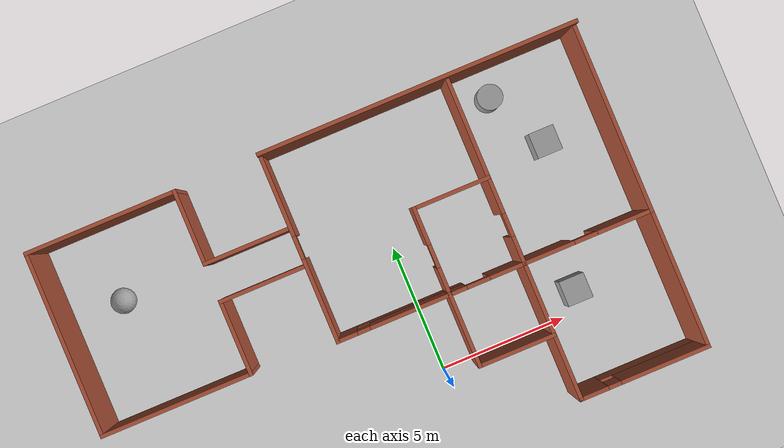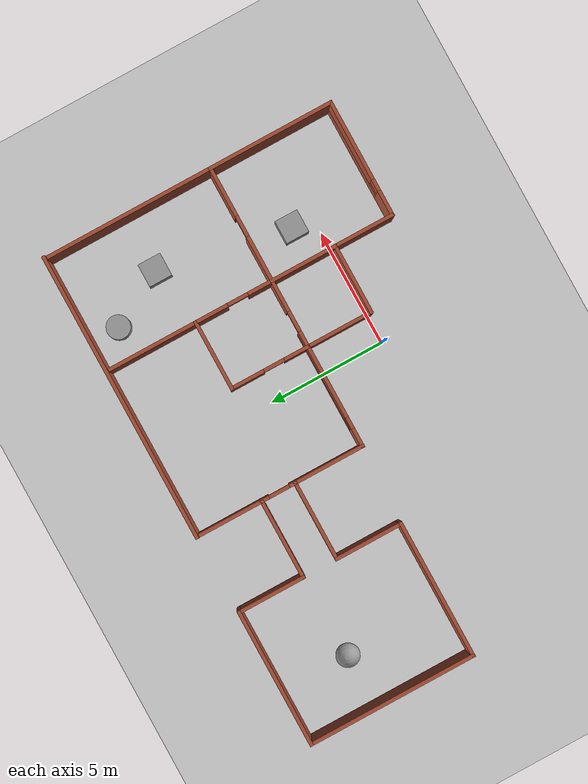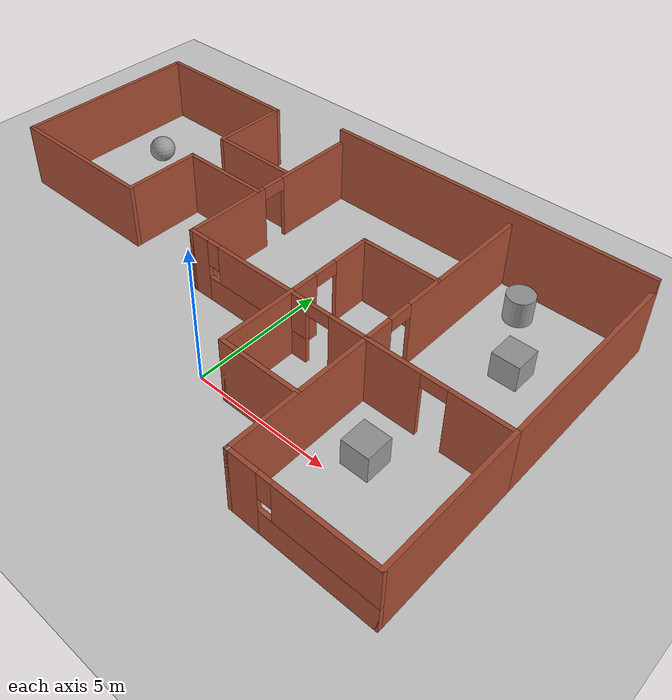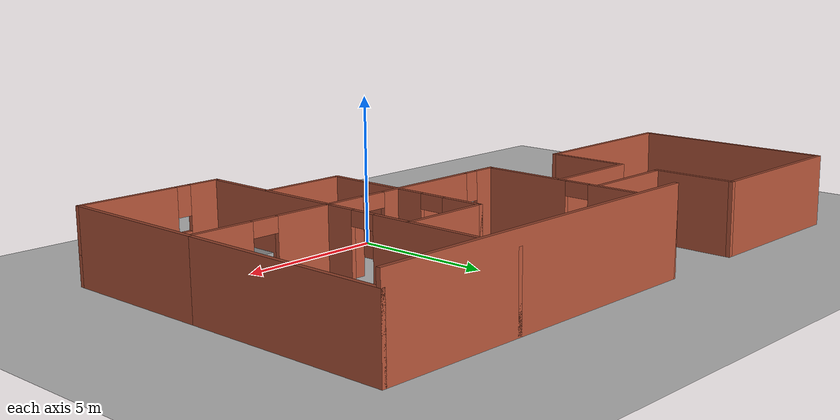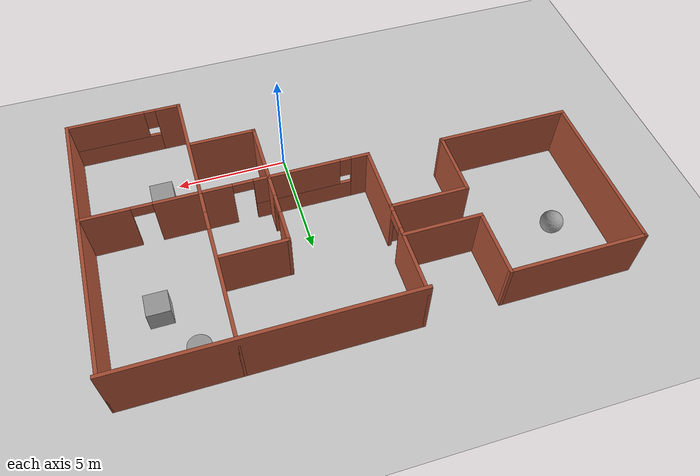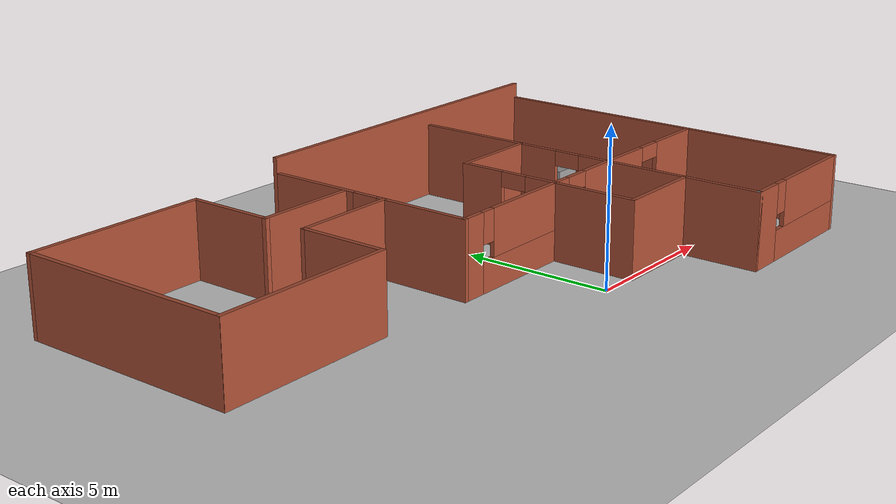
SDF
<sdf version="1.6">
 <world name="House">
  <light name="sun" type="directional">
   <pose>0 0 10 0 -0 0</pose>
   <diffuse>0.8 0.8 0.8 1</diffuse>
   <specular>0.2 0.2 0.2 1</specular>
   <attenuation>
    <range>1000</range>
    <constant>0.9</constant>
    <linear>0.01</linear>
    <quadratic>0.001</quadratic>
   </attenuation>
   <direction>-0.5 0.1 -0.9</direction>
  </light>
  <model name="ground_plane">
   <static>1</static>
   <link name="link">
    <collision name="collision">
     <geometry><plane><normal>0 0 1</normal><size>100 100</size></plane></geometry>
     <surface>
      <contact><collide_bitmask>65535</collide_bitmask></contact>
      <friction><ode><mu>100</mu><mu2>50</mu2></ode></friction>
     </surface>
    </collision>
    <visual name="visual">
     <cast_shadows>0</cast_shadows>
     <geometry><plane><normal>0 0 1</normal><size>100 100</size></plane></geometry>
     <material>
      <script><uri>file://media/materials/scripts/gazebo.material</uri><name>Gazebo/Grey</name></script>
     </material>
    </visual>
   </link>
  </model>
  <gravity>0 0 -9.8</gravity>
  <magnetic_field>6e-06 2.3e-05 -4.2e-05</magnetic_field>
  <atmosphere type="adiabatic"/>
  <physics name="default_physics" default="0" type="ode">
   <max_step_size>0.001</max_step_size>
   <real_time_factor>1</real_time_factor>
   <real_time_update_rate>1000</real_time_update_rate>
  </physics>
  <scene><ambient>0.4 0.4 0.4 1</ambient><background>0.7 0.7 0.7 1</background><shadows>1</shadows></scene>
  <audio><device>default</device></audio>
  <spherical_coordinates>
   <surface_model>EARTH_WGS84</surface_model>
   <latitude_deg>0</latitude_deg>
   <longitude_deg>0</longitude_deg>
   <elevation>0</elevation>
   <heading_deg>0</heading_deg>
  </spherical_coordinates>
  <model name="IslamHouse2">
   <pose>-1.63712 3.72481 0 0 -0 0</pose>
   <link name="Wall_0">
    <collision name="Wall_0_Collision">
     <geometry><box><size>12.5 0.15 3</size></box></geometry>
     <pose>0 0 1.5 0 -0 0</pose>
    </collision>
    <visual name="Wall_0_Visual">
     <pose>0 0 1.5 0 -0 0</pose>
     <geometry><box><size>12.5 0.15 3</size></box></geometry>
     <material>
      <script><uri>file://media/materials/scripts/gazebo.material</uri><name>Gazebo/Bricks</name></script>
      <ambient>1 1 1 1</ambient>
     </material>
     <meta><layer>0</layer></meta>
    </visual>
    <pose>4.61 6.35 0 0 -0 0</pose>
   </link>
   <link name="Wall_10">
    <pose>8.21 -1 0 0 -0 0</pose>
    <visual name="Wall_10_Visual_0">
     <pose>-1.4725 0 1.25 0 -0 0</pose>
     <geometry><box><size>2.055 0.15 2.5</size></box></geometry>
     <material>
      <script><uri>file://media/materials/scripts/gazebo.material</uri><name>Gazebo/Bricks</name></script>
      <ambient>1 1 1 1</ambient>
     </material>
     <meta><layer>0</layer></meta>
    </visual>
    <collision name="Wall_10_Collision_0">
     <geometry><box><size>2.055 0.15 2.5</size></box></geometry>
     <pose>-1.4725 0 1.25 0 -0 0</pose>
    </collision>
    <visual name="Wall_10_Visual_1">
     <pose>1.4775 0 1.25 0 -0 0</pose>
     <geometry><box><size>2.045 0.15 2.5</size></box></geometry>
     <material>
      <script><uri>file://media/materials/scripts/gazebo.material</uri><name>Gazebo/Bricks</name></script>
      <ambient>1 1 1 1</ambient>
     </material>
     <meta><layer>0</layer></meta>
    </visual>
    <collision name="Wall_10_Collision_1">
     <geometry><box><size>2.045 0.15 2.5</size></box></geometry>
     <pose>1.4775 0 1.25 0 -0 0</pose>
    </collision>
    <visual name="Wall_10_Visual_2">
     <pose>0.004999 0 2.25 0 -0 0</pose>
     <geometry><box><size>0.9 0.15 0.5</size></box></geometry>
     <material>
      <script><uri>file://media/materials/scripts/gazebo.material</uri><name>Gazebo/Bricks</name></script>
      <ambient>1 1 1 1</ambient>
     </material>
     <meta><layer>0</layer></meta>
    </visual>
    <collision name="Wall_10_Collision_2">
     <geometry><box><size>0.9 0.15 0.5</size></box></geometry>
     <pose>0.004999 0 2.25 0 -0 0</pose>
    </collision>
   </link>
   <link name="Wall_14">
    <collision name="Wall_14_Collision">
     <geometry><box><size>7.5 0.15 2.5</size></box></geometry>
     <pose>0 0 1.25 0 -0 0</pose>
    </collision>
    <visual name="Wall_14_Visual">
     <pose>0 0 1.25 0 -0 0</pose>
     <geometry><box><size>7.5 0.15 2.5</size></box></geometry>
     <material>
      <script><uri>file://media/materials/scripts/gazebo.material</uri><name>Gazebo/Bricks</name></script>
      <ambient>1 1 1 1</ambient>
     </material>
     <meta><layer>0</layer></meta>
    </visual>
    <pose>10.785 2.675 0 0 -0 -1.5708</pose>
   </link>
   <link name="Wall_19">
    <pose>2.855 0.715 0 0 -0 1.5708</pose>
    <visual name="Wall_19_Visual_0">
     <pose>-1.2025 0 1.25 0 -0 0</pose>
     <geometry><box><size>1.095 0.15 2.5</size></box></geometry>
     <material>
      <script><uri>file://media/materials/scripts/gazebo.material</uri><name>Gazebo/Bricks</name></script>
      <ambient>1 1 1 1</ambient>
     </material>
     <meta><layer>0</layer></meta>
    </visual>
    <collision name="Wall_19_Collision_0">
     <geometry><box><size>1.095 0.15 2.5</size></box></geometry>
     <pose>-1.2025 0 1.25 0 -0 0</pose>
    </collision>
    <visual name="Wall_19_Visual_1">
     <pose>0.9975 0 1.25 0 -0 0</pose>
     <geometry><box><size>1.505 0.15 2.5</size></box></geometry>
     <material>
      <script><uri>file://media/materials/scripts/gazebo.material</uri><name>Gazebo/Bricks</name></script>
      <ambient>1 1 1 1</ambient>
     </material>
     <meta><layer>0</layer></meta>
    </visual>
    <collision name="Wall_19_Collision_1">
     <geometry><box><size>1.505 0.15 2.5</size></box></geometry>
     <pose>0.9975 0 1.25 0 -0 0</pose>
    </collision>
    <visual name="Wall_19_Visual_2">
     <pose>-0.205 0 2.25 0 -0 0</pose>
     <geometry><box><size>0.9 0.15 0.5</size></box></geometry>
     <material>
      <script><uri>file://media/materials/scripts/gazebo.material</uri><name>Gazebo/Bricks</name></script>
      <ambient>1 1 1 1</ambient>
     </material>
     <meta><layer>0</layer></meta>
    </visual>
    <collision name="Wall_19_Collision_2">
     <geometry><box><size>0.9 0.15 0.5</size></box></geometry>
     <pose>-0.205 0 2.25 0 -0 0</pose>
    </collision>
   </link>
   <link name="Wall_2">
    <pose>-1.565 2.675 0 0 -0 -1.5708</pose>
    <visual name="Wall_2_Visual_0">
     <pose>-2.1125 0 1.25 0 -0 0</pose>
     <geometry><box><size>3.275 0.15 2.5</size></box></geometry>
     <material>
      <script><uri>file://media/materials/scripts/gazebo.material</uri><name>Gazebo/Bricks</name></script>
      <ambient>1 1 1 1</ambient>
     </material>
     <meta><layer>0</layer></meta>
    </visual>
    <collision name="Wall_2_Collision_0">
     <geometry><box><size>3.275 0.15 2.5</size></box></geometry>
     <pose>-2.1125 0 1.25 0 -0 0</pose>
    </collision>
    <visual name="Wall_2_Visual_1">
     <pose>2.0875 0 1.25 0 -0 0</pose>
     <geometry><box><size>3.325 0.15 2.5</size></box></geometry>
     <material>
      <script><uri>file://media/materials/scripts/gazebo.material</uri><name>Gazebo/Bricks</name></script>
      <ambient>1 1 1 1</ambient>
     </material>
     <meta><layer>0</layer></meta>
    </visual>
    <collision name="Wall_2_Collision_1">
     <geometry><box><size>3.325 0.15 2.5</size></box></geometry>
     <pose>2.0875 0 1.25 0 -0 0</pose>
    </collision>
    <visual name="Wall_2_Visual_2">
     <pose>-0.025 0 2.25 0 -0 0</pose>
     <geometry><box><size>0.9 0.15 0.5</size></box></geometry>
     <material>
      <script><uri>file://media/materials/scripts/gazebo.material</uri><name>Gazebo/Bricks</name></script>
      <ambient>1 1 1 1</ambient>
     </material>
     <meta><layer>0</layer></meta>
    </visual>
    <collision name="Wall_2_Collision_2">
     <geometry><box><size>0.9 0.15 0.5</size></box></geometry>
     <pose>-0.025 0 2.25 0 -0 0</pose>
    </collision>
   </link>
   <link name="Wall_21">
    <collision name="Wall_21_Collision">
     <geometry><box><size>3.07 0.15 2.5</size></box></geometry>
     <pose>0 0 1.25 0 -0 0</pose>
    </collision>
    <visual name="Wall_21_Visual">
     <pose>0 0 1.25 0 -0 0</pose>
     <geometry><box><size>3.07 0.15 2.5</size></box></geometry>
     <material>
      <script><uri>file://media/materials/scripts/gazebo.material</uri><name>Gazebo/Bricks</name></script>
      <ambient>1 1 1 1</ambient>
     </material>
     <meta><layer>0</layer></meta>
    </visual>
    <pose>4.315 2.39 0 0 -0 0</pose>
   </link>
   <link name="Wall_24">
    <collision name="Wall_24_Collision">
     <geometry><box><size>3 0.15 2.5</size></box></geometry>
     <pose>0 0 1.25 0 -0 0</pose>
    </collision>
    <visual name="Wall_24_Visual">
     <pose>0 0 1.25 0 -0 0</pose>
     <geometry><box><size>3 0.15 2.5</size></box></geometry>
     <material>
      <script><uri>file://media/materials/scripts/gazebo.material</uri><name>Gazebo/Bricks</name></script>
      <ambient>1 1 1 1</ambient>
     </material>
     <meta><layer>0</layer></meta>
    </visual>
    <pose>2.855 -2.385 0 0 -0 -1.5708</pose>
   </link>
   <link name="Wall_26">
    <collision name="Wall_26_Collision">
     <geometry><box><size>3.07 0.15 2.5</size></box></geometry>
     <pose>0 0 1.25 0 -0 0</pose>
    </collision>
    <visual name="Wall_26_Visual">
     <pose>0 0 1.25 0 -0 0</pose>
     <geometry><box><size>3.07 0.15 2.5</size></box></geometry>
     <material>
      <script><uri>file://media/materials/scripts/gazebo.material</uri><name>Gazebo/Bricks</name></script>
      <ambient>1 1 1 1</ambient>
     </material>
     <meta><layer>0</layer></meta>
    </visual>
    <pose>4.315 -3.81 0 0 -0 0</pose>
   </link>
   <link name="Wall_28">
    <collision name="Wall_28_Collision">
     <geometry><box><size>5.5 0.15 2.5</size></box></geometry>
     <pose>0 0 1.25 0 -0 0</pose>
    </collision>
    <visual name="Wall_28_Visual">
     <pose>0 0 1.25 0 -0 0</pose>
     <geometry><box><size>5.5 0.15 2.5</size></box></geometry>
     <material>
      <script><uri>file://media/materials/scripts/gazebo.material</uri><name>Gazebo/Bricks</name></script>
      <ambient>1 1 1 1</ambient>
     </material>
     <meta><layer>0</layer></meta>
    </visual>
    <pose>5.785 -3.675 0 0 -0 -1.5708</pose>
   </link>
   <link name="Wall_29">
    <collision name="Wall_29_Collision">
     <geometry><box><size>0.15 0.15 2.5</size></box></geometry>
     <pose>0 0 1.25 0 -0 0</pose>
    </collision>
    <visual name="Wall_29_Visual">
     <pose>0 0 1.25 0 -0 0</pose>
     <geometry><box><size>0.15 0.15 2.5</size></box></geometry>
     <material>
      <script><uri>file://media/materials/scripts/gazebo.material</uri><name>Gazebo/Grey</name></script>
      <ambient>1 1 1 1</ambient>
     </material>
     <meta><layer>0</layer></meta>
    </visual>
    <pose>5.785 -6.35 0 0 -0 0</pose>
   </link>
   <link name="Wall_31">
    <pose>8.285 -6.35 0 0 -0 0</pose>
    <visual name="Wall_31_Visual_0">
     <pose>-1.9975 0 1.25 0 -0 0</pose>
     <geometry><box><size>1.155 0.15 2.5</size></box></geometry>
     <material>
      <script><uri>file://media/materials/scripts/gazebo.material</uri><name>Gazebo/Bricks</name></script>
      <ambient>1 1 1 1</ambient>
     </material>
     <meta><layer>0</layer></meta>
    </visual>
    <collision name="Wall_31_Collision_0">
     <geometry><box><size>1.155 0.15 2.5</size></box></geometry>
     <pose>-1.9975 0 1.25 0 -0 0</pose>
    </collision>
    <visual name="Wall_31_Visual_1">
     <pose>0.5775 0 0.5 0 -0 0</pose>
     <geometry><box><size>3.995 0.15 1</size></box></geometry>
     <material>
      <script><uri>file://media/materials/scripts/gazebo.material</uri><name>Gazebo/Bricks</name></script>
      <ambient>1 1 1 1</ambient>
     </material>
     <meta><layer>0</layer></meta>
    </visual>
    <collision name="Wall_31_Collision_1">
     <geometry><box><size>3.995 0.15 1</size></box></geometry>
     <pose>0.5775 0 0.5 0 -0 0</pose>
    </collision>
    <visual name="Wall_31_Visual_2">
     <pose>0.8275 0 1.75 0 -0 0</pose>
     <geometry><box><size>3.495 0.15 1.5</size></box></geometry>
     <material>
      <script><uri>file://media/materials/scripts/gazebo.material</uri><name>Gazebo/Bricks</name></script>
      <ambient>1 1 1 1</ambient>
     </material>
     <meta><layer>0</layer></meta>
    </visual>
    <collision name="Wall_31_Collision_2">
     <geometry><box><size>3.495 0.15 1.5</size></box></geometry>
     <pose>0.8275 0 1.75 0 -0 0</pose>
    </collision>
    <visual name="Wall_31_Visual_3">
     <pose>-1.17 0 2 0 -0 0</pose>
     <geometry><box><size>0.5 0.15 1</size></box></geometry>
     <material>
      <script><uri>file://media/materials/scripts/gazebo.material</uri><name>Gazebo/Bricks</name></script>
      <ambient>1 1 1 1</ambient>
     </material>
     <meta><layer>0</layer></meta>
    </visual>
    <collision name="Wall_31_Collision_3">
     <geometry><box><size>0.5 0.15 1</size></box></geometry>
     <pose>-1.17 0 2 0 -0 0</pose>
    </collision>
   </link>
   <link name="Wall_35">
    <collision name="Wall_35_Collision">
     <geometry><box><size>5.5 0.15 2.5</size></box></geometry>
     <pose>0 0 1.25 0 -0 0</pose>
    </collision>
    <visual name="Wall_35_Visual">
     <pose>0 0 1.25 0 -0 0</pose>
     <geometry><box><size>5.5 0.15 2.5</size></box></geometry>
     <material>
      <script><uri>file://media/materials/scripts/gazebo.material</uri><name>Gazebo/Bricks</name></script>
      <ambient>1 1 1 1</ambient>
     </material>
     <meta><layer>0</layer></meta>
    </visual>
    <pose>10.785 -3.675 0 0 -0 -1.5708</pose>
   </link>
   <link name="Wall_39">
    <collision name="Wall_39_Collision">
     <geometry><box><size>3.5 0.15 2.5</size></box></geometry>
     <pose>0 0 1.25 0 -0 0</pose>
    </collision>
    <visual name="Wall_39_Visual">
     <pose>0 0 1.25 0 -0 0</pose>
     <geometry><box><size>3.5 0.15 2.5</size></box></geometry>
     <material>
      <script><uri>file://media/materials/scripts/gazebo.material</uri><name>Gazebo/Bricks</name></script>
      <ambient>1 1 1 1</ambient>
     </material>
     <meta><layer>0</layer></meta>
    </visual>
    <pose>-3.26 3.48 0 0 -0 3.14159</pose>
   </link>
   <link name="Wall_41">
    <collision name="Wall_41_Collision">
     <geometry><box><size>3.51 0.15 2.5</size></box></geometry>
     <pose>0 0 1.25 0 -0 0</pose>
    </collision>
    <visual name="Wall_41_Visual">
     <pose>0 0 1.25 0 -0 0</pose>
     <geometry><box><size>3.51 0.15 2.5</size></box></geometry>
     <material>
      <script><uri>file://media/materials/scripts/gazebo.material</uri><name>Gazebo/Bricks</name></script>
      <ambient>1 1 1 1</ambient>
     </material>
     <meta><layer>0</layer></meta>
    </visual>
    <pose>-3.255 1.99 0 0 -0 3.14159</pose>
   </link>
   <link name="Wall_44">
    <collision name="Wall_44_Collision">
     <geometry><box><size>3 0.15 2.5</size></box></geometry>
     <pose>0 0 1.25 0 -0 0</pose>
    </collision>
    <visual name="Wall_44_Visual">
     <pose>0 0 1.25 0 -0 0</pose>
     <geometry><box><size>3 0.15 2.5</size></box></geometry>
     <material>
      <script><uri>file://media/materials/scripts/gazebo.material</uri><name>Gazebo/Bricks</name></script>
      <ambient>1 1 1 1</ambient>
     </material>
     <meta><layer>0</layer></meta>
    </visual>
    <pose>-4.935 4.905 0 0 -0 1.5708</pose>
   </link>
   <link name="Wall_46">
    <collision name="Wall_46_Collision">
     <geometry><box><size>3 0.15 2.5</size></box></geometry>
     <pose>0 0 1.25 0 -0 0</pose>
    </collision>
    <visual name="Wall_46_Visual">
     <pose>0 0 1.25 0 -0 0</pose>
     <geometry><box><size>3 0.15 2.5</size></box></geometry>
     <material>
      <script><uri>file://media/materials/scripts/gazebo.material</uri><name>Gazebo/Bricks</name></script>
      <ambient>1 1 1 1</ambient>
     </material>
     <meta><layer>0</layer></meta>
    </visual>
    <pose>-4.935 0.565 0 0 -0 -1.5708</pose>
   </link>
   <link name="Wall_48">
    <collision name="Wall_48_Collision">
     <geometry><box><size>6 0.15 2.5</size></box></geometry>
     <pose>0 0 1.25 0 -0 0</pose>
    </collision>
    <visual name="Wall_48_Visual">
     <pose>0 0 1.25 0 -0 0</pose>
     <geometry><box><size>6 0.15 2.5</size></box></geometry>
     <material>
      <script><uri>file://media/materials/scripts/gazebo.material</uri><name>Gazebo/Bricks</name></script>
      <ambient>1 1 1 1</ambient>
     </material>
     <meta><layer>0</layer></meta>
    </visual>
    <pose>-7.86 6.33 0 0 -0 3.14159</pose>
   </link>
   <link name="Wall_5">
    <pose>2.11 -1 0 0 -0 0</pose>
    <visual name="Wall_5_Visual_0">
     <pose>-3.3225 0 1.25 0 -0 0</pose>
     <geometry><box><size>0.855 0.15 2.5</size></box></geometry>
     <material>
      <script><uri>file://media/materials/scripts/gazebo.material</uri><name>Gazebo/Bricks</name></script>
      <ambient>1 1 1 1</ambient>
     </material>
     <meta><layer>0</layer></meta>
    </visual>
    <collision name="Wall_5_Collision_0">
     <geometry><box><size>0.855 0.15 2.5</size></box></geometry>
     <pose>-3.3225 0 1.25 0 -0 0</pose>
    </collision>
    <visual name="Wall_5_Visual_1">
     <pose>3.0325 0 1.25 0 -0 0</pose>
     <geometry><box><size>1.435 0.15 2.5</size></box></geometry>
     <material>
      <script><uri>file://media/materials/scripts/gazebo.material</uri><name>Gazebo/Bricks</name></script>
      <ambient>1 1 1 1</ambient>
     </material>
     <meta><layer>0</layer></meta>
    </visual>
    <collision name="Wall_5_Collision_1">
     <geometry><box><size>1.435 0.15 2.5</size></box></geometry>
     <pose>3.0325 0 1.25 0 -0 0</pose>
    </collision>
    <visual name="Wall_5_Visual_2">
     <pose>-0.74 0 0.5 0 -0 0</pose>
     <geometry><box><size>4.31 0.15 1</size></box></geometry>
     <material>
      <script><uri>file://media/materials/scripts/gazebo.material</uri><name>Gazebo/Bricks</name></script>
      <ambient>1 1 1 1</ambient>
     </material>
     <meta><layer>0</layer></meta>
    </visual>
    <collision name="Wall_5_Collision_2">
     <geometry><box><size>4.31 0.15 1</size></box></geometry>
     <pose>-0.74 0 0.5 0 -0 0</pose>
    </collision>
    <visual name="Wall_5_Visual_3">
     <pose>-0.49 0 1.75 0 -0 0</pose>
     <geometry><box><size>3.81 0.15 1.5</size></box></geometry>
     <material>
      <script><uri>file://media/materials/scripts/gazebo.material</uri><name>Gazebo/Bricks</name></script>
      <ambient>1 1 1 1</ambient>
     </material>
     <meta><layer>0</layer></meta>
    </visual>
    <collision name="Wall_5_Collision_3">
     <geometry><box><size>3.81 0.15 1.5</size></box></geometry>
     <pose>-0.49 0 1.75 0 -0 0</pose>
    </collision>
    <visual name="Wall_5_Visual_4">
     <pose>-2.645 0 2 0 -0 0</pose>
     <geometry><box><size>0.5 0.15 1</size></box></geometry>
     <material>
      <script><uri>file://media/materials/scripts/gazebo.material</uri><name>Gazebo/Bricks</name></script>
      <ambient>1 1 1 1</ambient>
     </material>
     <meta><layer>0</layer></meta>
    </visual>
    <collision name="Wall_5_Collision_4">
     <geometry><box><size>0.5 0.15 1</size></box></geometry>
     <pose>-2.645 0 2 0 -0 0</pose>
    </collision>
    <visual name="Wall_5_Visual_5">
     <pose>1.865 0 2.25 0 -0 0</pose>
     <geometry><box><size>0.9 0.15 0.5</size></box></geometry>
     <material>
      <script><uri>file://media/materials/scripts/gazebo.material</uri><name>Gazebo/Bricks</name></script>
      <ambient>1 1 1 1</ambient>
     </material>
     <meta><layer>0</layer></meta>
    </visual>
    <collision name="Wall_5_Collision_5">
     <geometry><box><size>0.9 0.15 0.5</size></box></geometry>
     <pose>1.865 0 2.25 0 -0 0</pose>
    </collision>
   </link>
   <link name="Wall_50">
    <collision name="Wall_50_Collision">
     <geometry><box><size>6 0.15 2.5</size></box></geometry>
     <pose>0 0 1.25 0 -0 0</pose>
    </collision>
    <visual name="Wall_50_Visual">
     <pose>0 0 1.25 0 -0 0</pose>
     <geometry><box><size>6 0.15 2.5</size></box></geometry>
     <material>
      <script><uri>file://media/materials/scripts/gazebo.material</uri><name>Gazebo/Bricks</name></script>
      <ambient>1 1 1 1</ambient>
     </material>
     <meta><layer>0</layer></meta>
    </visual>
    <pose>-7.86 -0.86 0 0 -0 3.14159</pose>
   </link>
   <link name="Wall_55">
    <collision name="Wall_55_Collision">
     <geometry><box><size>7.33 0.15 2.5</size></box></geometry>
     <pose>0 0 1.25 0 -0 0</pose>
    </collision>
    <visual name="Wall_55_Visual">
     <pose>0 0 1.25 0 -0 0</pose>
     <geometry><box><size>7.33 0.15 2.5</size></box></geometry>
     <material>
      <script><uri>file://media/materials/scripts/gazebo.material</uri><name>Gazebo/Bricks</name></script>
      <ambient>1 1 1 1</ambient>
     </material>
     <meta><layer>0</layer></meta>
    </visual>
    <pose>-10.785 2.74 0 0 -0 -1.5708</pose>
   </link>
   <link name="Wall_8">
    <pose>5.785 2.675 0 0 -0 1.5708</pose>
    <visual name="Wall_8_Visual_0">
     <pose>-3.1775 0 1.25 0 -0 0</pose>
     <geometry><box><size>1.145 0.15 2.5</size></box></geometry>
     <material>
      <script><uri>file://media/materials/scripts/gazebo.material</uri><name>Gazebo/Bricks</name></script>
      <ambient>1 1 1 1</ambient>
     </material>
     <meta><layer>0</layer></meta>
    </visual>
    <collision name="Wall_8_Collision_0">
     <geometry><box><size>1.145 0.15 2.5</size></box></geometry>
     <pose>-3.1775 0 1.25 0 -0 0</pose>
    </collision>
    <visual name="Wall_8_Visual_1">
     <pose>1.0225 0 1.25 0 -0 0</pose>
     <geometry><box><size>5.455 0.15 2.5</size></box></geometry>
     <material>
      <script><uri>file://media/materials/scripts/gazebo.material</uri><name>Gazebo/Bricks</name></script>
      <ambient>1 1 1 1</ambient>
     </material>
     <meta><layer>0</layer></meta>
    </visual>
    <collision name="Wall_8_Collision_1">
     <geometry><box><size>5.455 0.15 2.5</size></box></geometry>
     <pose>1.0225 0 1.25 0 -0 0</pose>
    </collision>
    <visual name="Wall_8_Visual_2">
     <pose>-2.155 0 2.25 0 -0 0</pose>
     <geometry><box><size>0.9 0.15 0.5</size></box></geometry>
     <material>
      <script><uri>file://media/materials/scripts/gazebo.material</uri><name>Gazebo/Bricks</name></script>
      <ambient>1 1 1 1</ambient>
     </material>
     <meta><layer>0</layer></meta>
    </visual>
    <collision name="Wall_8_Collision_2">
     <geometry><box><size>0.9 0.15 0.5</size></box></geometry>
     <pose>-2.155 0 2.25 0 -0 0</pose>
    </collision>
   </link>
   <static>1</static>
  </model>
  <model name="unit_box">
   <pose>5.73783 0.946725 0.5 0 -0 0</pose>
   <link name="link">
    <inertial>
     <mass>1</mass>
     <inertia>
      <ixx>0.166667</ixx>
      <ixy>0</ixy>
      <ixz>0</ixz>
      <iyy>0.166667</iyy>
      <iyz>0</iyz>
      <izz>0.166667</izz>
     </inertia>
    </inertial>
    <collision name="collision"><geometry><box><size>1 1 1</size></box></geometry></collision>
    <visual name="visual">
     <geometry><box><size>1 1 1</size></box></geometry>
     <material>
      <script><name>Gazebo/Grey</name><uri>file://media/materials/scripts/gazebo.material</uri></script>
     </material>
    </visual>
   </link>
  </model>
  <model name="unit_cylinder">
   <pose>5.54805 8.88939 0.5 0 -0 0</pose>
   <link name="link">
    <inertial>
     <mass>1</mass>
     <inertia><ixx>0.145833</ixx><ixy>0</ixy><ixz>0</ixz><iyy>0.145833</iyy><iyz>0</iyz><izz>0.125</izz></inertia>
    </inertial>
    <collision name="collision">
     <geometry><cylinder><radius>0.5</radius><length>1</length></cylinder></geometry>
    </collision>
    <visual name="visual">
     <geometry><cylinder><radius>0.5</radius><length>1</length></cylinder></geometry>
     <material>
      <script><name>Gazebo/Grey</name><uri>file://media/materials/scripts/gazebo.material</uri></script>
     </material>
    </visual>
   </link>
  </model>
  <model name="unit_box_0">
   <pose>6.83488 6.53546 0.5 0 -0 0</pose>
   <link name="link">
    <inertial>
     <mass>1</mass>
     <inertia>
      <ixx>0.166667</ixx>
      <ixy>0</ixy>
      <ixz>0</ixz>
      <iyy>0.166667</iyy>
      <iyz>0</iyz>
      <izz>0.166667</izz>
     </inertia>
    </inertial>
    <collision name="collision"><geometry><box><size>1 1 1</size></box></geometry></collision>
    <visual name="visual">
     <geometry><box><size>1 1 1</size></box></geometry>
     <material>
      <script><name>Gazebo/Grey</name><uri>file://media/materials/scripts/gazebo.material</uri></script>
     </material>
    </visual>
   </link>
  </model>
  <model name="unit_sphere">
   <pose>-10.2552 7.15541 0.5 0 -0 0</pose>
   <link name="link">
    <inertial>
     <mass>1</mass>
     <inertia><ixx>0.1</ixx><ixy>0</ixy><ixz>0</ixz><iyy>0.1</iyy><iyz>0</iyz><izz>0.1</izz></inertia>
    </inertial>
    <collision name="collision"><geometry><sphere><radius>0.5</radius></sphere></geometry></collision>
    <visual name="visual">
     <geometry><sphere><radius>0.5</radius></sphere></geometry>
     <material>
      <script><name>Gazebo/Grey</name><uri>file://media/materials/scripts/gazebo.material</uri></script>
     </material>
    </visual>
   </link>
  </model>
 </world>
</sdf>
